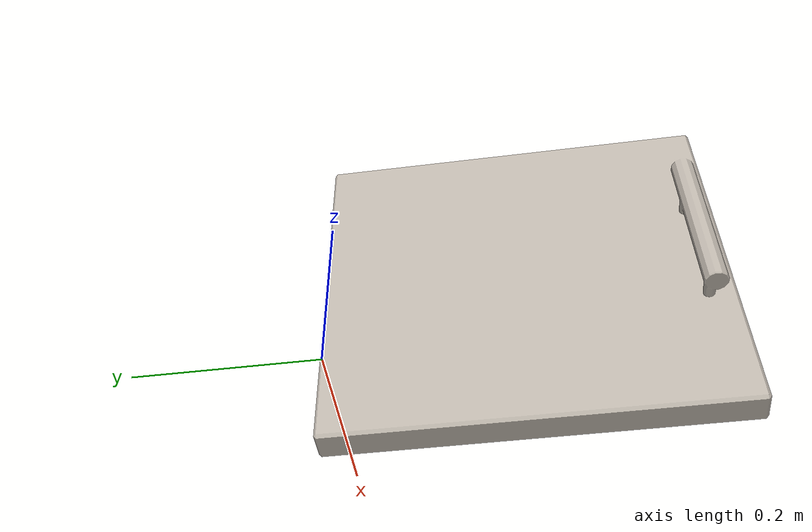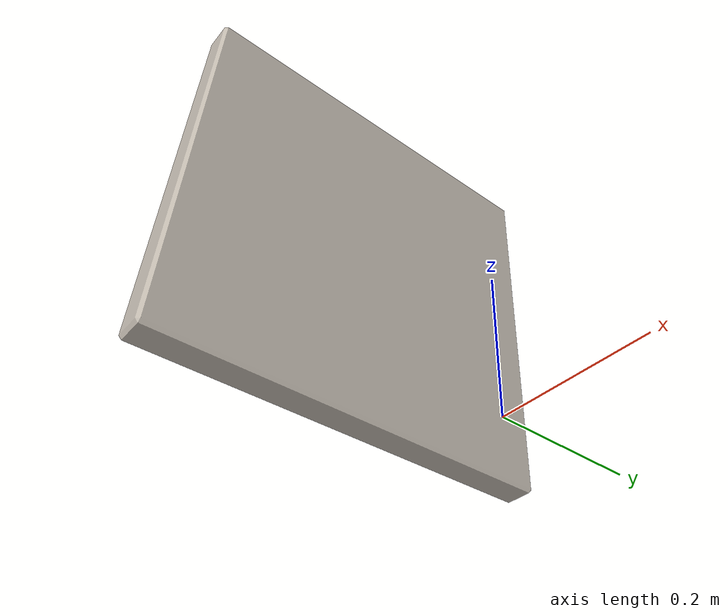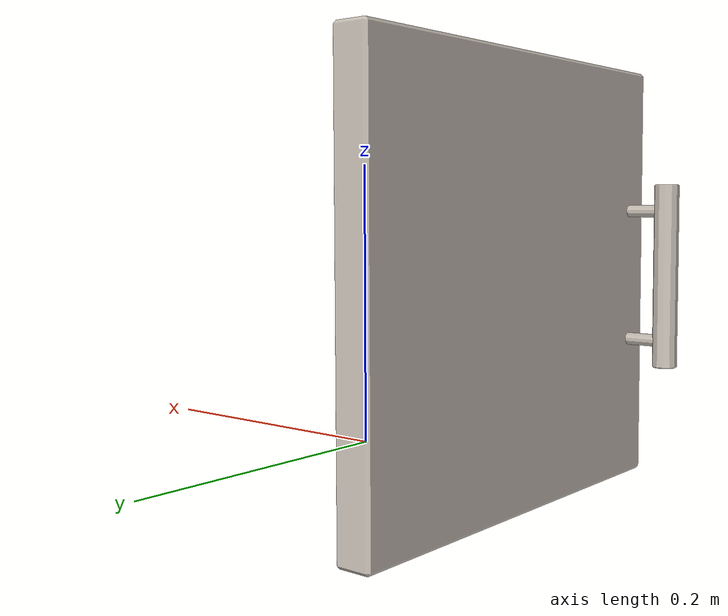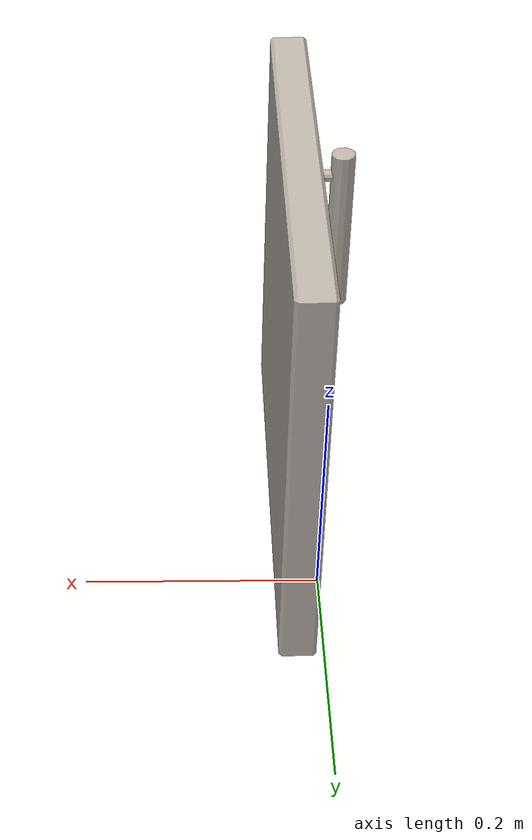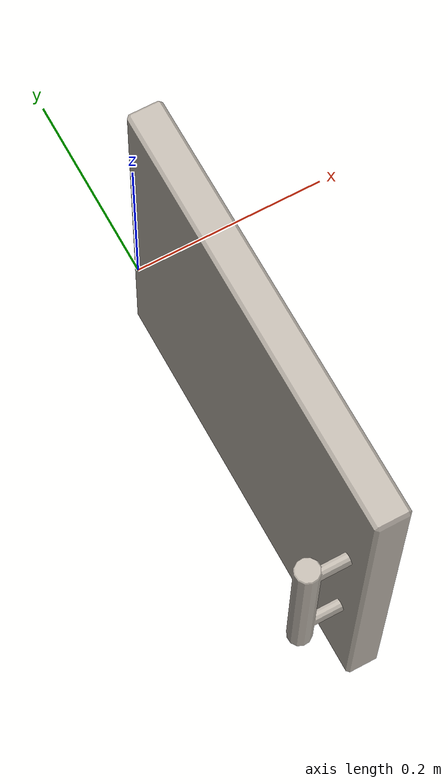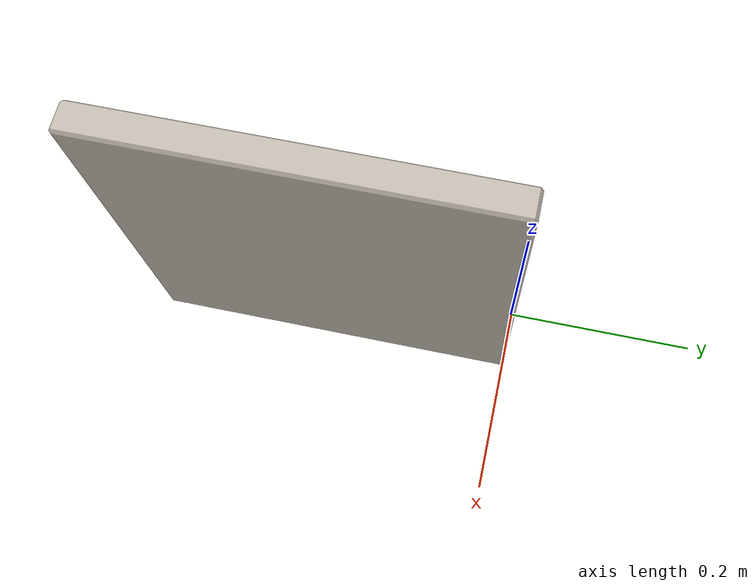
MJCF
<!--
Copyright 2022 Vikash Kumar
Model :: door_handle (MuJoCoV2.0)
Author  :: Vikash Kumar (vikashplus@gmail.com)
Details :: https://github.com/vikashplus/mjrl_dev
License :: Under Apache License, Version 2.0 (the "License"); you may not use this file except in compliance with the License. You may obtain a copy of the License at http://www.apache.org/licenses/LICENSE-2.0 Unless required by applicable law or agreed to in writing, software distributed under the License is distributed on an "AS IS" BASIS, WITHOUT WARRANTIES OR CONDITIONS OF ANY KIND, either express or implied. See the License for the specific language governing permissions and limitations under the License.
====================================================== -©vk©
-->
<mujoco model="door_handle">
    <!-- load texture and msh files -©vk©-->
    <asset>
        <texture name="textobj" type="2d" file="door_handle.png"/>
        <mesh name="meshobj" file="door_handle.msh"/>
        <material name="matobj" texture="textobj"/>
    </asset>

    <!-- Add files to the world -©vk©-->
    <worldbody>
        <light directional="true" diffuse=".4 .4 .4" specular="0.1 0.1 0.1" pos="0 0 5.0" dir="0 0 -1" castshadow="false"/>
        <light directional="true" diffuse=".6 .6 .6" specular="0.2 0.2 0.2" pos="0 0 4" dir="0 0 -1"/>

        <body pos="0.0 0.0 0.1">
            <geom type="mesh" mesh="meshobj" size=".1 .1" material="matobj" group="1" condim="1"/>
        </body>
    </worldbody>
</mujoco>
